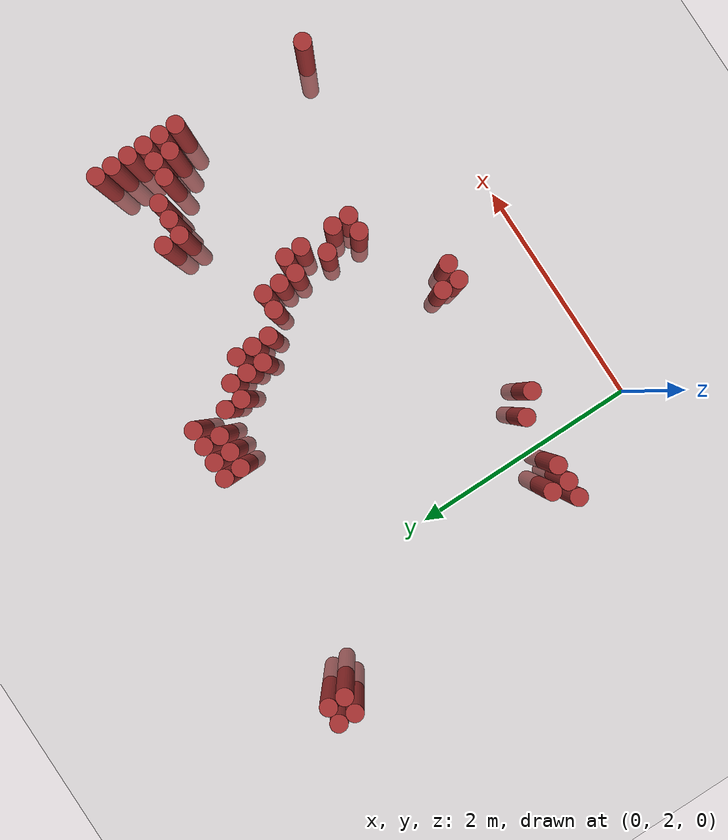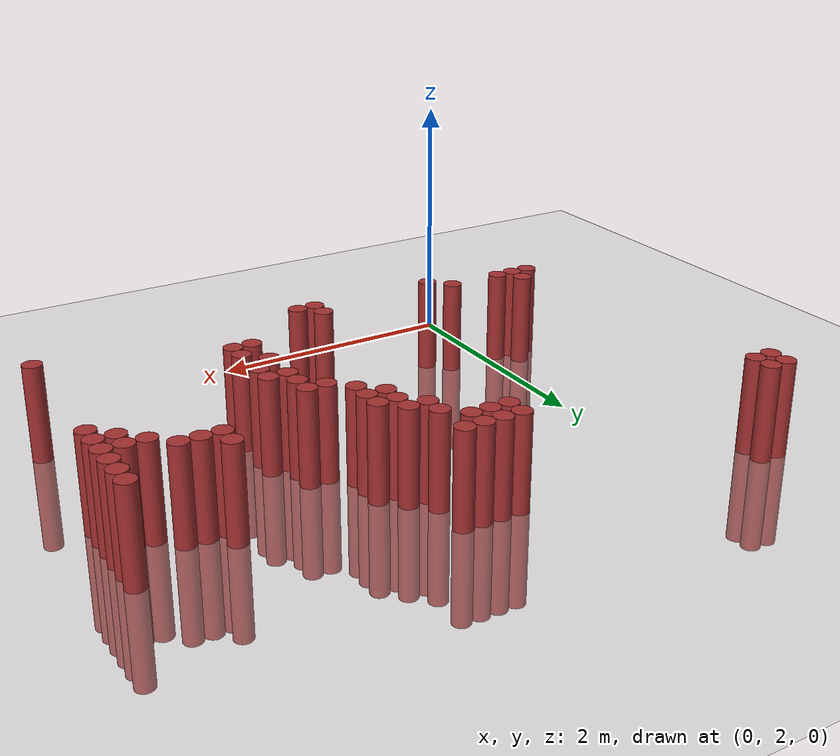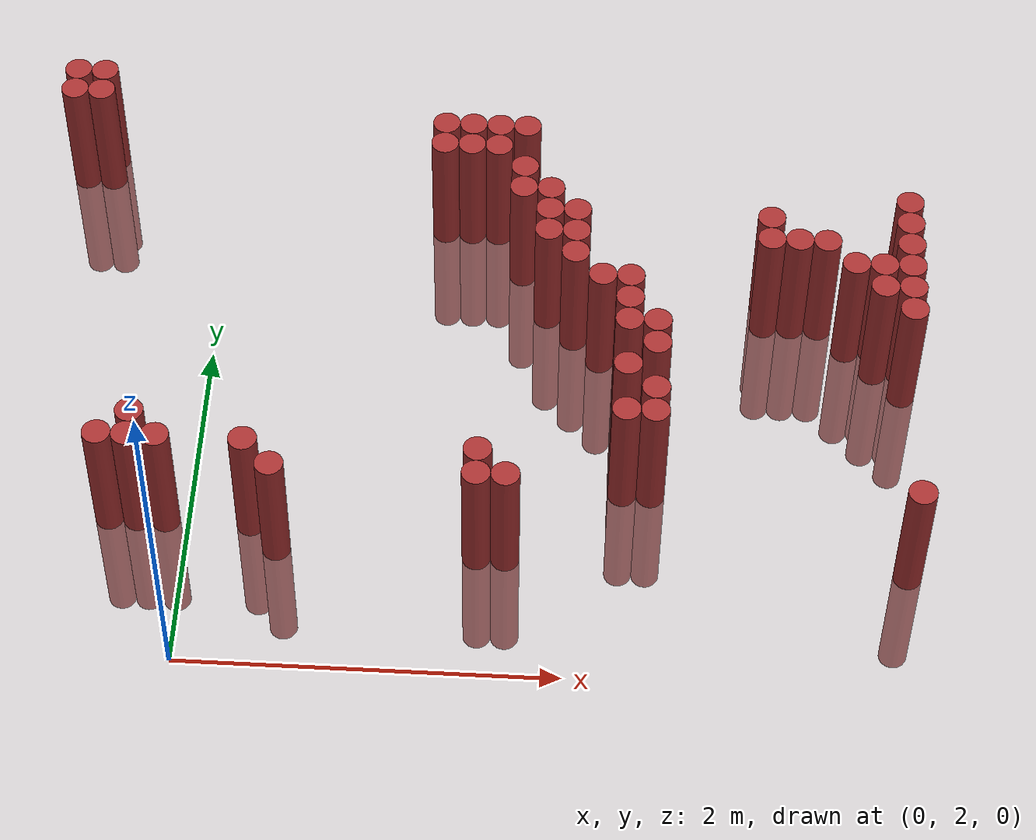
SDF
<sdf version="1.6">
 <world name="default">
  <model name="ground_plane">
   <static>1</static>
   <link name="link">
    <collision name="collision">
     <geometry><plane><normal>0 0 1</normal><size>100 100</size></plane></geometry>
     <surface><friction><ode><mu>100</mu><mu2>50</mu2></ode></friction></surface>
    </collision>
    <visual name="visual">
     <cast_shadows>0</cast_shadows>
     <geometry><plane><normal>0 0 1</normal><size>100 100</size></plane></geometry>
     <material>
      <script><uri>file://media/materials/scripts/gazebo.material</uri><name>Gazebo/Grey</name></script>
     </material>
    </visual>
   </link>
  </model>
  <model name="unit_cylinder_322">
   <static>1</static>
   <pose>-0.875000 5.275000 0.000000 0.000000 0.000000 0.000000</pose>
   <link name="link">
    <inertial>
     <mass>1</mass>
     <inertia><ixx>0.145833</ixx><ixy>0</ixy><ixz>0</ixz><iyy>0.145833</iyy><iyz>0</iyz><izz>0.125</izz></inertia>
    </inertial>
    <collision name="collision">
     <geometry><cylinder><radius>0.075000</radius><length>1.5</length></cylinder></geometry>
    </collision>
    <visual name="visual">
     <geometry><cylinder><radius>0.075000</radius><length>1.5</length></cylinder></geometry>
     <material>
      <ambient>0.648000 0.192000 0.192000 1</ambient>
      <diffuse>0.648000 0.192000 0.192000 1</diffuse>
     </material>
     <material>
      <script><name>Gazebo/Grey</name><uri>file://media/materials/scripts/gazebo.material</uri></script>
     </material>
    </visual>
   </link>
  </model>
  <model name="unit_cylinder_323">
   <static>1</static>
   <pose>-0.875000 5.425000 0.000000 0.000000 0.000000 0.000000</pose>
   <link name="link">
    <inertial>
     <mass>1</mass>
     <inertia><ixx>0.145833</ixx><ixy>0</ixy><ixz>0</ixz><iyy>0.145833</iyy><iyz>0</iyz><izz>0.125</izz></inertia>
    </inertial>
    <collision name="collision">
     <geometry><cylinder><radius>0.075000</radius><length>1.5</length></cylinder></geometry>
    </collision>
    <visual name="visual">
     <geometry><cylinder><radius>0.075000</radius><length>1.5</length></cylinder></geometry>
     <material>
      <ambient>0.648000 0.192000 0.192000 1</ambient>
      <diffuse>0.648000 0.192000 0.192000 1</diffuse>
     </material>
     <material>
      <script><name>Gazebo/Grey</name><uri>file://media/materials/scripts/gazebo.material</uri></script>
     </material>
    </visual>
   </link>
  </model>
  <model name="unit_cylinder_326">
   <static>1</static>
   <pose>-0.725000 5.275000 0.000000 0.000000 0.000000 0.000000</pose>
   <link name="link">
    <inertial>
     <mass>1</mass>
     <inertia><ixx>0.145833</ixx><ixy>0</ixy><ixz>0</ixz><iyy>0.145833</iyy><iyz>0</iyz><izz>0.125</izz></inertia>
    </inertial>
    <collision name="collision">
     <geometry><cylinder><radius>0.075000</radius><length>1.5</length></cylinder></geometry>
    </collision>
    <visual name="visual">
     <geometry><cylinder><radius>0.075000</radius><length>1.5</length></cylinder></geometry>
     <material>
      <ambient>0.648000 0.192000 0.192000 1</ambient>
      <diffuse>0.648000 0.192000 0.192000 1</diffuse>
     </material>
     <material>
      <script><name>Gazebo/Grey</name><uri>file://media/materials/scripts/gazebo.material</uri></script>
     </material>
    </visual>
   </link>
  </model>
  <model name="unit_cylinder_327">
   <static>1</static>
   <pose>-0.725000 5.425000 0.000000 0.000000 0.000000 0.000000</pose>
   <link name="link">
    <inertial>
     <mass>1</mass>
     <inertia><ixx>0.145833</ixx><ixy>0</ixy><ixz>0</ixz><iyy>0.145833</iyy><iyz>0</iyz><izz>0.125</izz></inertia>
    </inertial>
    <collision name="collision">
     <geometry><cylinder><radius>0.075000</radius><length>1.5</length></cylinder></geometry>
    </collision>
    <visual name="visual">
     <geometry><cylinder><radius>0.075000</radius><length>1.5</length></cylinder></geometry>
     <material>
      <ambient>0.648000 0.192000 0.192000 1</ambient>
      <diffuse>0.648000 0.192000 0.192000 1</diffuse>
     </material>
     <material>
      <script><name>Gazebo/Grey</name><uri>file://media/materials/scripts/gazebo.material</uri></script>
     </material>
    </visual>
   </link>
  </model>
  <model name="unit_cylinder_331">
   <static>1</static>
   <pose>-0.425000 2.875000 0.000000 0.000000 0.000000 0.000000</pose>
   <link name="link">
    <inertial>
     <mass>1</mass>
     <inertia><ixx>0.145833</ixx><ixy>0</ixy><ixz>0</ixz><iyy>0.145833</iyy><iyz>0</iyz><izz>0.125</izz></inertia>
    </inertial>
    <collision name="collision">
     <geometry><cylinder><radius>0.075000</radius><length>1.5</length></cylinder></geometry>
    </collision>
    <visual name="visual">
     <geometry><cylinder><radius>0.075000</radius><length>1.5</length></cylinder></geometry>
     <material>
      <ambient>0.648000 0.192000 0.192000 1</ambient>
      <diffuse>0.648000 0.192000 0.192000 1</diffuse>
     </material>
     <material>
      <script><name>Gazebo/Grey</name><uri>file://media/materials/scripts/gazebo.material</uri></script>
     </material>
    </visual>
   </link>
  </model>
  <model name="unit_cylinder_334">
   <static>1</static>
   <pose>-0.275000 2.875000 0.000000 0.000000 0.000000 0.000000</pose>
   <link name="link">
    <inertial>
     <mass>1</mass>
     <inertia><ixx>0.145833</ixx><ixy>0</ixy><ixz>0</ixz><iyy>0.145833</iyy><iyz>0</iyz><izz>0.125</izz></inertia>
    </inertial>
    <collision name="collision">
     <geometry><cylinder><radius>0.075000</radius><length>1.5</length></cylinder></geometry>
    </collision>
    <visual name="visual">
     <geometry><cylinder><radius>0.075000</radius><length>1.5</length></cylinder></geometry>
     <material>
      <ambient>0.648000 0.192000 0.192000 1</ambient>
      <diffuse>0.648000 0.192000 0.192000 1</diffuse>
     </material>
     <material>
      <script><name>Gazebo/Grey</name><uri>file://media/materials/scripts/gazebo.material</uri></script>
     </material>
    </visual>
   </link>
  </model>
  <model name="unit_cylinder_335">
   <static>1</static>
   <pose>-0.275000 3.025000 0.000000 0.000000 0.000000 0.000000</pose>
   <link name="link">
    <inertial>
     <mass>1</mass>
     <inertia><ixx>0.145833</ixx><ixy>0</ixy><ixz>0</ixz><iyy>0.145833</iyy><iyz>0</iyz><izz>0.125</izz></inertia>
    </inertial>
    <collision name="collision">
     <geometry><cylinder><radius>0.075000</radius><length>1.5</length></cylinder></geometry>
    </collision>
    <visual name="visual">
     <geometry><cylinder><radius>0.075000</radius><length>1.5</length></cylinder></geometry>
     <material>
      <ambient>0.648000 0.192000 0.192000 1</ambient>
      <diffuse>0.648000 0.192000 0.192000 1</diffuse>
     </material>
     <material>
      <script><name>Gazebo/Grey</name><uri>file://media/materials/scripts/gazebo.material</uri></script>
     </material>
    </visual>
   </link>
  </model>
  <model name="unit_cylinder_338">
   <static>1</static>
   <pose>-0.125000 2.875000 0.000000 0.000000 0.000000 0.000000</pose>
   <link name="link">
    <inertial>
     <mass>1</mass>
     <inertia><ixx>0.145833</ixx><ixy>0</ixy><ixz>0</ixz><iyy>0.145833</iyy><iyz>0</iyz><izz>0.125</izz></inertia>
    </inertial>
    <collision name="collision">
     <geometry><cylinder><radius>0.075000</radius><length>1.5</length></cylinder></geometry>
    </collision>
    <visual name="visual">
     <geometry><cylinder><radius>0.075000</radius><length>1.5</length></cylinder></geometry>
     <material>
      <ambient>0.648000 0.192000 0.192000 1</ambient>
      <diffuse>0.648000 0.192000 0.192000 1</diffuse>
     </material>
     <material>
      <script><name>Gazebo/Grey</name><uri>file://media/materials/scripts/gazebo.material</uri></script>
     </material>
    </visual>
   </link>
  </model>
  <model name="unit_cylinder_359">
   <static>1</static>
   <pose>0.325000 2.875000 0.000000 0.000000 0.000000 0.000000</pose>
   <link name="link">
    <inertial>
     <mass>1</mass>
     <inertia><ixx>0.145833</ixx><ixy>0</ixy><ixz>0</ixz><iyy>0.145833</iyy><iyz>0</iyz><izz>0.125</izz></inertia>
    </inertial>
    <collision name="collision">
     <geometry><cylinder><radius>0.075000</radius><length>1.5</length></cylinder></geometry>
    </collision>
    <visual name="visual">
     <geometry><cylinder><radius>0.075000</radius><length>1.5</length></cylinder></geometry>
     <material>
      <ambient>0.648000 0.192000 0.192000 1</ambient>
      <diffuse>0.648000 0.192000 0.192000 1</diffuse>
     </material>
     <material>
      <script><name>Gazebo/Grey</name><uri>file://media/materials/scripts/gazebo.material</uri></script>
     </material>
    </visual>
   </link>
  </model>
  <model name="unit_cylinder_363">
   <static>1</static>
   <pose>0.475000 2.725000 0.000000 0.000000 0.000000 0.000000</pose>
   <link name="link">
    <inertial>
     <mass>1</mass>
     <inertia><ixx>0.145833</ixx><ixy>0</ixy><ixz>0</ixz><iyy>0.145833</iyy><iyz>0</iyz><izz>0.125</izz></inertia>
    </inertial>
    <collision name="collision">
     <geometry><cylinder><radius>0.075000</radius><length>1.5</length></cylinder></geometry>
    </collision>
    <visual name="visual">
     <geometry><cylinder><radius>0.075000</radius><length>1.5</length></cylinder></geometry>
     <material>
      <ambient>0.648000 0.192000 0.192000 1</ambient>
      <diffuse>0.648000 0.192000 0.192000 1</diffuse>
     </material>
     <material>
      <script><name>Gazebo/Grey</name><uri>file://media/materials/scripts/gazebo.material</uri></script>
     </material>
    </visual>
   </link>
  </model>
  <model name="unit_cylinder_374">
   <static>1</static>
   <pose>1.225000 4.975000 0.000000 0.000000 0.000000 0.000000</pose>
   <link name="link">
    <inertial>
     <mass>1</mass>
     <inertia><ixx>0.145833</ixx><ixy>0</ixy><ixz>0</ixz><iyy>0.145833</iyy><iyz>0</iyz><izz>0.125</izz></inertia>
    </inertial>
    <collision name="collision">
     <geometry><cylinder><radius>0.075000</radius><length>1.5</length></cylinder></geometry>
    </collision>
    <visual name="visual">
     <geometry><cylinder><radius>0.075000</radius><length>1.5</length></cylinder></geometry>
     <material>
      <ambient>0.648000 0.192000 0.192000 1</ambient>
      <diffuse>0.648000 0.192000 0.192000 1</diffuse>
     </material>
     <material>
      <script><name>Gazebo/Grey</name><uri>file://media/materials/scripts/gazebo.material</uri></script>
     </material>
    </visual>
   </link>
  </model>
  <model name="unit_cylinder_375">
   <static>1</static>
   <pose>1.225000 5.125000 0.000000 0.000000 0.000000 0.000000</pose>
   <link name="link">
    <inertial>
     <mass>1</mass>
     <inertia><ixx>0.145833</ixx><ixy>0</ixy><ixz>0</ixz><iyy>0.145833</iyy><iyz>0</iyz><izz>0.125</izz></inertia>
    </inertial>
    <collision name="collision">
     <geometry><cylinder><radius>0.075000</radius><length>1.5</length></cylinder></geometry>
    </collision>
    <visual name="visual">
     <geometry><cylinder><radius>0.075000</radius><length>1.5</length></cylinder></geometry>
     <material>
      <ambient>0.648000 0.192000 0.192000 1</ambient>
      <diffuse>0.648000 0.192000 0.192000 1</diffuse>
     </material>
     <material>
      <script><name>Gazebo/Grey</name><uri>file://media/materials/scripts/gazebo.material</uri></script>
     </material>
    </visual>
   </link>
  </model>
  <model name="unit_cylinder_376">
   <static>1</static>
   <pose>1.375000 4.975000 0.000000 0.000000 0.000000 0.000000</pose>
   <link name="link">
    <inertial>
     <mass>1</mass>
     <inertia><ixx>0.145833</ixx><ixy>0</ixy><ixz>0</ixz><iyy>0.145833</iyy><iyz>0</iyz><izz>0.125</izz></inertia>
    </inertial>
    <collision name="collision">
     <geometry><cylinder><radius>0.075000</radius><length>1.5</length></cylinder></geometry>
    </collision>
    <visual name="visual">
     <geometry><cylinder><radius>0.075000</radius><length>1.5</length></cylinder></geometry>
     <material>
      <ambient>0.648000 0.192000 0.192000 1</ambient>
      <diffuse>0.648000 0.192000 0.192000 1</diffuse>
     </material>
     <material>
      <script><name>Gazebo/Grey</name><uri>file://media/materials/scripts/gazebo.material</uri></script>
     </material>
    </visual>
   </link>
  </model>
  <model name="unit_cylinder_377">
   <static>1</static>
   <pose>1.375000 5.125000 0.000000 0.000000 0.000000 0.000000</pose>
   <link name="link">
    <inertial>
     <mass>1</mass>
     <inertia><ixx>0.145833</ixx><ixy>0</ixy><ixz>0</ixz><iyy>0.145833</iyy><iyz>0</iyz><izz>0.125</izz></inertia>
    </inertial>
    <collision name="collision">
     <geometry><cylinder><radius>0.075000</radius><length>1.5</length></cylinder></geometry>
    </collision>
    <visual name="visual">
     <geometry><cylinder><radius>0.075000</radius><length>1.5</length></cylinder></geometry>
     <material>
      <ambient>0.648000 0.192000 0.192000 1</ambient>
      <diffuse>0.648000 0.192000 0.192000 1</diffuse>
     </material>
     <material>
      <script><name>Gazebo/Grey</name><uri>file://media/materials/scripts/gazebo.material</uri></script>
     </material>
    </visual>
   </link>
  </model>
  <model name="unit_cylinder_379">
   <static>1</static>
   <pose>1.525000 2.725000 0.000000 0.000000 0.000000 0.000000</pose>
   <link name="link">
    <inertial>
     <mass>1</mass>
     <inertia><ixx>0.145833</ixx><ixy>0</ixy><ixz>0</ixz><iyy>0.145833</iyy><iyz>0</iyz><izz>0.125</izz></inertia>
    </inertial>
    <collision name="collision">
     <geometry><cylinder><radius>0.075000</radius><length>1.5</length></cylinder></geometry>
    </collision>
    <visual name="visual">
     <geometry><cylinder><radius>0.075000</radius><length>1.5</length></cylinder></geometry>
     <material>
      <ambient>0.648000 0.192000 0.192000 1</ambient>
      <diffuse>0.648000 0.192000 0.192000 1</diffuse>
     </material>
     <material>
      <script><name>Gazebo/Grey</name><uri>file://media/materials/scripts/gazebo.material</uri></script>
     </material>
    </visual>
   </link>
  </model>
  <model name="unit_cylinder_380">
   <static>1</static>
   <pose>1.525000 2.875000 0.000000 0.000000 0.000000 0.000000</pose>
   <link name="link">
    <inertial>
     <mass>1</mass>
     <inertia><ixx>0.145833</ixx><ixy>0</ixy><ixz>0</ixz><iyy>0.145833</iyy><iyz>0</iyz><izz>0.125</izz></inertia>
    </inertial>
    <collision name="collision">
     <geometry><cylinder><radius>0.075000</radius><length>1.5</length></cylinder></geometry>
    </collision>
    <visual name="visual">
     <geometry><cylinder><radius>0.075000</radius><length>1.5</length></cylinder></geometry>
     <material>
      <ambient>0.648000 0.192000 0.192000 1</ambient>
      <diffuse>0.648000 0.192000 0.192000 1</diffuse>
     </material>
     <material>
      <script><name>Gazebo/Grey</name><uri>file://media/materials/scripts/gazebo.material</uri></script>
     </material>
    </visual>
   </link>
  </model>
  <model name="unit_cylinder_381">
   <static>1</static>
   <pose>1.525000 4.975000 0.000000 0.000000 0.000000 0.000000</pose>
   <link name="link">
    <inertial>
     <mass>1</mass>
     <inertia><ixx>0.145833</ixx><ixy>0</ixy><ixz>0</ixz><iyy>0.145833</iyy><iyz>0</iyz><izz>0.125</izz></inertia>
    </inertial>
    <collision name="collision">
     <geometry><cylinder><radius>0.075000</radius><length>1.5</length></cylinder></geometry>
    </collision>
    <visual name="visual">
     <geometry><cylinder><radius>0.075000</radius><length>1.5</length></cylinder></geometry>
     <material>
      <ambient>0.648000 0.192000 0.192000 1</ambient>
      <diffuse>0.648000 0.192000 0.192000 1</diffuse>
     </material>
     <material>
      <script><name>Gazebo/Grey</name><uri>file://media/materials/scripts/gazebo.material</uri></script>
     </material>
    </visual>
   </link>
  </model>
  <model name="unit_cylinder_382">
   <static>1</static>
   <pose>1.525000 5.125000 0.000000 0.000000 0.000000 0.000000</pose>
   <link name="link">
    <inertial>
     <mass>1</mass>
     <inertia><ixx>0.145833</ixx><ixy>0</ixy><ixz>0</ixz><iyy>0.145833</iyy><iyz>0</iyz><izz>0.125</izz></inertia>
    </inertial>
    <collision name="collision">
     <geometry><cylinder><radius>0.075000</radius><length>1.5</length></cylinder></geometry>
    </collision>
    <visual name="visual">
     <geometry><cylinder><radius>0.075000</radius><length>1.5</length></cylinder></geometry>
     <material>
      <ambient>0.648000 0.192000 0.192000 1</ambient>
      <diffuse>0.648000 0.192000 0.192000 1</diffuse>
     </material>
     <material>
      <script><name>Gazebo/Grey</name><uri>file://media/materials/scripts/gazebo.material</uri></script>
     </material>
    </visual>
   </link>
  </model>
  <model name="unit_cylinder_383">
   <static>1</static>
   <pose>1.675000 2.725000 0.000000 0.000000 0.000000 0.000000</pose>
   <link name="link">
    <inertial>
     <mass>1</mass>
     <inertia><ixx>0.145833</ixx><ixy>0</ixy><ixz>0</ixz><iyy>0.145833</iyy><iyz>0</iyz><izz>0.125</izz></inertia>
    </inertial>
    <collision name="collision">
     <geometry><cylinder><radius>0.075000</radius><length>1.5</length></cylinder></geometry>
    </collision>
    <visual name="visual">
     <geometry><cylinder><radius>0.075000</radius><length>1.5</length></cylinder></geometry>
     <material>
      <ambient>0.648000 0.192000 0.192000 1</ambient>
      <diffuse>0.648000 0.192000 0.192000 1</diffuse>
     </material>
     <material>
      <script><name>Gazebo/Grey</name><uri>file://media/materials/scripts/gazebo.material</uri></script>
     </material>
    </visual>
   </link>
  </model>
  <model name="unit_cylinder_384">
   <static>1</static>
   <pose>1.675000 4.675000 0.000000 0.000000 0.000000 0.000000</pose>
   <link name="link">
    <inertial>
     <mass>1</mass>
     <inertia><ixx>0.145833</ixx><ixy>0</ixy><ixz>0</ixz><iyy>0.145833</iyy><iyz>0</iyz><izz>0.125</izz></inertia>
    </inertial>
    <collision name="collision">
     <geometry><cylinder><radius>0.075000</radius><length>1.5</length></cylinder></geometry>
    </collision>
    <visual name="visual">
     <geometry><cylinder><radius>0.075000</radius><length>1.5</length></cylinder></geometry>
     <material>
      <ambient>0.648000 0.192000 0.192000 1</ambient>
      <diffuse>0.648000 0.192000 0.192000 1</diffuse>
     </material>
     <material>
      <script><name>Gazebo/Grey</name><uri>file://media/materials/scripts/gazebo.material</uri></script>
     </material>
    </visual>
   </link>
  </model>
  <model name="unit_cylinder_385">
   <static>1</static>
   <pose>1.675000 4.825000 0.000000 0.000000 0.000000 0.000000</pose>
   <link name="link">
    <inertial>
     <mass>1</mass>
     <inertia><ixx>0.145833</ixx><ixy>0</ixy><ixz>0</ixz><iyy>0.145833</iyy><iyz>0</iyz><izz>0.125</izz></inertia>
    </inertial>
    <collision name="collision">
     <geometry><cylinder><radius>0.075000</radius><length>1.5</length></cylinder></geometry>
    </collision>
    <visual name="visual">
     <geometry><cylinder><radius>0.075000</radius><length>1.5</length></cylinder></geometry>
     <material>
      <ambient>0.648000 0.192000 0.192000 1</ambient>
      <diffuse>0.648000 0.192000 0.192000 1</diffuse>
     </material>
     <material>
      <script><name>Gazebo/Grey</name><uri>file://media/materials/scripts/gazebo.material</uri></script>
     </material>
    </visual>
   </link>
  </model>
  <model name="unit_cylinder_386">
   <static>1</static>
   <pose>1.675000 5.125000 0.000000 0.000000 0.000000 0.000000</pose>
   <link name="link">
    <inertial>
     <mass>1</mass>
     <inertia><ixx>0.145833</ixx><ixy>0</ixy><ixz>0</ixz><iyy>0.145833</iyy><iyz>0</iyz><izz>0.125</izz></inertia>
    </inertial>
    <collision name="collision">
     <geometry><cylinder><radius>0.075000</radius><length>1.5</length></cylinder></geometry>
    </collision>
    <visual name="visual">
     <geometry><cylinder><radius>0.075000</radius><length>1.5</length></cylinder></geometry>
     <material>
      <ambient>0.648000 0.192000 0.192000 1</ambient>
      <diffuse>0.648000 0.192000 0.192000 1</diffuse>
     </material>
     <material>
      <script><name>Gazebo/Grey</name><uri>file://media/materials/scripts/gazebo.material</uri></script>
     </material>
    </visual>
   </link>
  </model>
  <model name="unit_cylinder_387">
   <static>1</static>
   <pose>1.825000 4.375000 0.000000 0.000000 0.000000 0.000000</pose>
   <link name="link">
    <inertial>
     <mass>1</mass>
     <inertia><ixx>0.145833</ixx><ixy>0</ixy><ixz>0</ixz><iyy>0.145833</iyy><iyz>0</iyz><izz>0.125</izz></inertia>
    </inertial>
    <collision name="collision">
     <geometry><cylinder><radius>0.075000</radius><length>1.5</length></cylinder></geometry>
    </collision>
    <visual name="visual">
     <geometry><cylinder><radius>0.075000</radius><length>1.5</length></cylinder></geometry>
     <material>
      <ambient>0.648000 0.192000 0.192000 1</ambient>
      <diffuse>0.648000 0.192000 0.192000 1</diffuse>
     </material>
     <material>
      <script><name>Gazebo/Grey</name><uri>file://media/materials/scripts/gazebo.material</uri></script>
     </material>
    </visual>
   </link>
  </model>
  <model name="unit_cylinder_388">
   <static>1</static>
   <pose>1.825000 4.525000 0.000000 0.000000 0.000000 0.000000</pose>
   <link name="link">
    <inertial>
     <mass>1</mass>
     <inertia><ixx>0.145833</ixx><ixy>0</ixy><ixz>0</ixz><iyy>0.145833</iyy><iyz>0</iyz><izz>0.125</izz></inertia>
    </inertial>
    <collision name="collision">
     <geometry><cylinder><radius>0.075000</radius><length>1.5</length></cylinder></geometry>
    </collision>
    <visual name="visual">
     <geometry><cylinder><radius>0.075000</radius><length>1.5</length></cylinder></geometry>
     <material>
      <ambient>0.648000 0.192000 0.192000 1</ambient>
      <diffuse>0.648000 0.192000 0.192000 1</diffuse>
     </material>
     <material>
      <script><name>Gazebo/Grey</name><uri>file://media/materials/scripts/gazebo.material</uri></script>
     </material>
    </visual>
   </link>
  </model>
  <model name="unit_cylinder_389">
   <static>1</static>
   <pose>1.825000 4.675000 0.000000 0.000000 0.000000 0.000000</pose>
   <link name="link">
    <inertial>
     <mass>1</mass>
     <inertia><ixx>0.145833</ixx><ixy>0</ixy><ixz>0</ixz><iyy>0.145833</iyy><iyz>0</iyz><izz>0.125</izz></inertia>
    </inertial>
    <collision name="collision">
     <geometry><cylinder><radius>0.075000</radius><length>1.5</length></cylinder></geometry>
    </collision>
    <visual name="visual">
     <geometry><cylinder><radius>0.075000</radius><length>1.5</length></cylinder></geometry>
     <material>
      <ambient>0.648000 0.192000 0.192000 1</ambient>
      <diffuse>0.648000 0.192000 0.192000 1</diffuse>
     </material>
     <material>
      <script><name>Gazebo/Grey</name><uri>file://media/materials/scripts/gazebo.material</uri></script>
     </material>
    </visual>
   </link>
  </model>
  <model name="unit_cylinder_390">
   <static>1</static>
   <pose>1.975000 4.225000 0.000000 0.000000 0.000000 0.000000</pose>
   <link name="link">
    <inertial>
     <mass>1</mass>
     <inertia><ixx>0.145833</ixx><ixy>0</ixy><ixz>0</ixz><iyy>0.145833</iyy><iyz>0</iyz><izz>0.125</izz></inertia>
    </inertial>
    <collision name="collision">
     <geometry><cylinder><radius>0.075000</radius><length>1.5</length></cylinder></geometry>
    </collision>
    <visual name="visual">
     <geometry><cylinder><radius>0.075000</radius><length>1.5</length></cylinder></geometry>
     <material>
      <ambient>0.648000 0.192000 0.192000 1</ambient>
      <diffuse>0.648000 0.192000 0.192000 1</diffuse>
     </material>
     <material>
      <script><name>Gazebo/Grey</name><uri>file://media/materials/scripts/gazebo.material</uri></script>
     </material>
    </visual>
   </link>
  </model>
  <model name="unit_cylinder_391">
   <static>1</static>
   <pose>1.975000 4.375000 0.000000 0.000000 0.000000 0.000000</pose>
   <link name="link">
    <inertial>
     <mass>1</mass>
     <inertia><ixx>0.145833</ixx><ixy>0</ixy><ixz>0</ixz><iyy>0.145833</iyy><iyz>0</iyz><izz>0.125</izz></inertia>
    </inertial>
    <collision name="collision">
     <geometry><cylinder><radius>0.075000</radius><length>1.5</length></cylinder></geometry>
    </collision>
    <visual name="visual">
     <geometry><cylinder><radius>0.075000</radius><length>1.5</length></cylinder></geometry>
     <material>
      <ambient>0.648000 0.192000 0.192000 1</ambient>
      <diffuse>0.648000 0.192000 0.192000 1</diffuse>
     </material>
     <material>
      <script><name>Gazebo/Grey</name><uri>file://media/materials/scripts/gazebo.material</uri></script>
     </material>
    </visual>
   </link>
  </model>
  <model name="unit_cylinder_392">
   <static>1</static>
   <pose>1.975000 4.525000 0.000000 0.000000 0.000000 0.000000</pose>
   <link name="link">
    <inertial>
     <mass>1</mass>
     <inertia><ixx>0.145833</ixx><ixy>0</ixy><ixz>0</ixz><iyy>0.145833</iyy><iyz>0</iyz><izz>0.125</izz></inertia>
    </inertial>
    <collision name="collision">
     <geometry><cylinder><radius>0.075000</radius><length>1.5</length></cylinder></geometry>
    </collision>
    <visual name="visual">
     <geometry><cylinder><radius>0.075000</radius><length>1.5</length></cylinder></geometry>
     <material>
      <ambient>0.648000 0.192000 0.192000 1</ambient>
      <diffuse>0.648000 0.192000 0.192000 1</diffuse>
     </material>
     <material>
      <script><name>Gazebo/Grey</name><uri>file://media/materials/scripts/gazebo.material</uri></script>
     </material>
    </visual>
   </link>
  </model>
  <model name="unit_cylinder_396">
   <static>1</static>
   <pose>2.125000 4.075000 0.000000 0.000000 0.000000 0.000000</pose>
   <link name="link">
    <inertial>
     <mass>1</mass>
     <inertia><ixx>0.145833</ixx><ixy>0</ixy><ixz>0</ixz><iyy>0.145833</iyy><iyz>0</iyz><izz>0.125</izz></inertia>
    </inertial>
    <collision name="collision">
     <geometry><cylinder><radius>0.075000</radius><length>1.5</length></cylinder></geometry>
    </collision>
    <visual name="visual">
     <geometry><cylinder><radius>0.075000</radius><length>1.5</length></cylinder></geometry>
     <material>
      <ambient>0.648000 0.192000 0.192000 1</ambient>
      <diffuse>0.648000 0.192000 0.192000 1</diffuse>
     </material>
     <material>
      <script><name>Gazebo/Grey</name><uri>file://media/materials/scripts/gazebo.material</uri></script>
     </material>
    </visual>
   </link>
  </model>
  <model name="unit_cylinder_400">
   <static>1</static>
   <pose>2.275000 3.175000 0.000000 0.000000 0.000000 0.000000</pose>
   <link name="link">
    <inertial>
     <mass>1</mass>
     <inertia><ixx>0.145833</ixx><ixy>0</ixy><ixz>0</ixz><iyy>0.145833</iyy><iyz>0</iyz><izz>0.125</izz></inertia>
    </inertial>
    <collision name="collision">
     <geometry><cylinder><radius>0.075000</radius><length>1.5</length></cylinder></geometry>
    </collision>
    <visual name="visual">
     <geometry><cylinder><radius>0.075000</radius><length>1.5</length></cylinder></geometry>
     <material>
      <ambient>0.648000 0.192000 0.192000 1</ambient>
      <diffuse>0.648000 0.192000 0.192000 1</diffuse>
     </material>
     <material>
      <script><name>Gazebo/Grey</name><uri>file://media/materials/scripts/gazebo.material</uri></script>
     </material>
    </visual>
   </link>
  </model>
  <model name="unit_cylinder_401">
   <static>1</static>
   <pose>2.275000 3.475000 0.000000 0.000000 0.000000 0.000000</pose>
   <link name="link">
    <inertial>
     <mass>1</mass>
     <inertia><ixx>0.145833</ixx><ixy>0</ixy><ixz>0</ixz><iyy>0.145833</iyy><iyz>0</iyz><izz>0.125</izz></inertia>
    </inertial>
    <collision name="collision">
     <geometry><cylinder><radius>0.075000</radius><length>1.5</length></cylinder></geometry>
    </collision>
    <visual name="visual">
     <geometry><cylinder><radius>0.075000</radius><length>1.5</length></cylinder></geometry>
     <material>
      <ambient>0.648000 0.192000 0.192000 1</ambient>
      <diffuse>0.648000 0.192000 0.192000 1</diffuse>
     </material>
     <material>
      <script><name>Gazebo/Grey</name><uri>file://media/materials/scripts/gazebo.material</uri></script>
     </material>
    </visual>
   </link>
  </model>
  <model name="unit_cylinder_402">
   <static>1</static>
   <pose>2.275000 3.775000 0.000000 0.000000 0.000000 0.000000</pose>
   <link name="link">
    <inertial>
     <mass>1</mass>
     <inertia><ixx>0.145833</ixx><ixy>0</ixy><ixz>0</ixz><iyy>0.145833</iyy><iyz>0</iyz><izz>0.125</izz></inertia>
    </inertial>
    <collision name="collision">
     <geometry><cylinder><radius>0.075000</radius><length>1.5</length></cylinder></geometry>
    </collision>
    <visual name="visual">
     <geometry><cylinder><radius>0.075000</radius><length>1.5</length></cylinder></geometry>
     <material>
      <ambient>0.648000 0.192000 0.192000 1</ambient>
      <diffuse>0.648000 0.192000 0.192000 1</diffuse>
     </material>
     <material>
      <script><name>Gazebo/Grey</name><uri>file://media/materials/scripts/gazebo.material</uri></script>
     </material>
    </visual>
   </link>
  </model>
  <model name="unit_cylinder_403">
   <static>1</static>
   <pose>2.275000 3.925000 0.000000 0.000000 0.000000 0.000000</pose>
   <link name="link">
    <inertial>
     <mass>1</mass>
     <inertia><ixx>0.145833</ixx><ixy>0</ixy><ixz>0</ixz><iyy>0.145833</iyy><iyz>0</iyz><izz>0.125</izz></inertia>
    </inertial>
    <collision name="collision">
     <geometry><cylinder><radius>0.075000</radius><length>1.5</length></cylinder></geometry>
    </collision>
    <visual name="visual">
     <geometry><cylinder><radius>0.075000</radius><length>1.5</length></cylinder></geometry>
     <material>
      <ambient>0.648000 0.192000 0.192000 1</ambient>
      <diffuse>0.648000 0.192000 0.192000 1</diffuse>
     </material>
     <material>
      <script><name>Gazebo/Grey</name><uri>file://media/materials/scripts/gazebo.material</uri></script>
     </material>
    </visual>
   </link>
  </model>
  <model name="unit_cylinder_404">
   <static>1</static>
   <pose>2.275000 4.075000 0.000000 0.000000 0.000000 0.000000</pose>
   <link name="link">
    <inertial>
     <mass>1</mass>
     <inertia><ixx>0.145833</ixx><ixy>0</ixy><ixz>0</ixz><iyy>0.145833</iyy><iyz>0</iyz><izz>0.125</izz></inertia>
    </inertial>
    <collision name="collision">
     <geometry><cylinder><radius>0.075000</radius><length>1.5</length></cylinder></geometry>
    </collision>
    <visual name="visual">
     <geometry><cylinder><radius>0.075000</radius><length>1.5</length></cylinder></geometry>
     <material>
      <ambient>0.648000 0.192000 0.192000 1</ambient>
      <diffuse>0.648000 0.192000 0.192000 1</diffuse>
     </material>
     <material>
      <script><name>Gazebo/Grey</name><uri>file://media/materials/scripts/gazebo.material</uri></script>
     </material>
    </visual>
   </link>
  </model>
  <model name="unit_cylinder_407">
   <static>1</static>
   <pose>2.425000 3.175000 0.000000 0.000000 0.000000 0.000000</pose>
   <link name="link">
    <inertial>
     <mass>1</mass>
     <inertia><ixx>0.145833</ixx><ixy>0</ixy><ixz>0</ixz><iyy>0.145833</iyy><iyz>0</iyz><izz>0.125</izz></inertia>
    </inertial>
    <collision name="collision">
     <geometry><cylinder><radius>0.075000</radius><length>1.5</length></cylinder></geometry>
    </collision>
    <visual name="visual">
     <geometry><cylinder><radius>0.075000</radius><length>1.5</length></cylinder></geometry>
     <material>
      <ambient>0.648000 0.192000 0.192000 1</ambient>
      <diffuse>0.648000 0.192000 0.192000 1</diffuse>
     </material>
     <material>
      <script><name>Gazebo/Grey</name><uri>file://media/materials/scripts/gazebo.material</uri></script>
     </material>
    </visual>
   </link>
  </model>
  <model name="unit_cylinder_408">
   <static>1</static>
   <pose>2.425000 3.325000 0.000000 0.000000 0.000000 0.000000</pose>
   <link name="link">
    <inertial>
     <mass>1</mass>
     <inertia><ixx>0.145833</ixx><ixy>0</ixy><ixz>0</ixz><iyy>0.145833</iyy><iyz>0</iyz><izz>0.125</izz></inertia>
    </inertial>
    <collision name="collision">
     <geometry><cylinder><radius>0.075000</radius><length>1.5</length></cylinder></geometry>
    </collision>
    <visual name="visual">
     <geometry><cylinder><radius>0.075000</radius><length>1.5</length></cylinder></geometry>
     <material>
      <ambient>0.648000 0.192000 0.192000 1</ambient>
      <diffuse>0.648000 0.192000 0.192000 1</diffuse>
     </material>
     <material>
      <script><name>Gazebo/Grey</name><uri>file://media/materials/scripts/gazebo.material</uri></script>
     </material>
    </visual>
   </link>
  </model>
  <model name="unit_cylinder_409">
   <static>1</static>
   <pose>2.425000 3.625000 0.000000 0.000000 0.000000 0.000000</pose>
   <link name="link">
    <inertial>
     <mass>1</mass>
     <inertia><ixx>0.145833</ixx><ixy>0</ixy><ixz>0</ixz><iyy>0.145833</iyy><iyz>0</iyz><izz>0.125</izz></inertia>
    </inertial>
    <collision name="collision">
     <geometry><cylinder><radius>0.075000</radius><length>1.5</length></cylinder></geometry>
    </collision>
    <visual name="visual">
     <geometry><cylinder><radius>0.075000</radius><length>1.5</length></cylinder></geometry>
     <material>
      <ambient>0.648000 0.192000 0.192000 1</ambient>
      <diffuse>0.648000 0.192000 0.192000 1</diffuse>
     </material>
     <material>
      <script><name>Gazebo/Grey</name><uri>file://media/materials/scripts/gazebo.material</uri></script>
     </material>
    </visual>
   </link>
  </model>
  <model name="unit_cylinder_410">
   <static>1</static>
   <pose>2.425000 3.775000 0.000000 0.000000 0.000000 0.000000</pose>
   <link name="link">
    <inertial>
     <mass>1</mass>
     <inertia><ixx>0.145833</ixx><ixy>0</ixy><ixz>0</ixz><iyy>0.145833</iyy><iyz>0</iyz><izz>0.125</izz></inertia>
    </inertial>
    <collision name="collision">
     <geometry><cylinder><radius>0.075000</radius><length>1.5</length></cylinder></geometry>
    </collision>
    <visual name="visual">
     <geometry><cylinder><radius>0.075000</radius><length>1.5</length></cylinder></geometry>
     <material>
      <ambient>0.648000 0.192000 0.192000 1</ambient>
      <diffuse>0.648000 0.192000 0.192000 1</diffuse>
     </material>
     <material>
      <script><name>Gazebo/Grey</name><uri>file://media/materials/scripts/gazebo.material</uri></script>
     </material>
    </visual>
   </link>
  </model>
  <model name="unit_cylinder_417">
   <static>1</static>
   <pose>3.025000 4.375000 0.000000 0.000000 0.000000 0.000000</pose>
   <link name="link">
    <inertial>
     <mass>1</mass>
     <inertia><ixx>0.145833</ixx><ixy>0</ixy><ixz>0</ixz><iyy>0.145833</iyy><iyz>0</iyz><izz>0.125</izz></inertia>
    </inertial>
    <collision name="collision">
     <geometry><cylinder><radius>0.075000</radius><length>1.5</length></cylinder></geometry>
    </collision>
    <visual name="visual">
     <geometry><cylinder><radius>0.075000</radius><length>1.5</length></cylinder></geometry>
     <material>
      <ambient>0.648000 0.192000 0.192000 1</ambient>
      <diffuse>0.648000 0.192000 0.192000 1</diffuse>
     </material>
     <material>
      <script><name>Gazebo/Grey</name><uri>file://media/materials/scripts/gazebo.material</uri></script>
     </material>
    </visual>
   </link>
  </model>
  <model name="unit_cylinder_418">
   <static>1</static>
   <pose>3.025000 4.525000 0.000000 0.000000 0.000000 0.000000</pose>
   <link name="link">
    <inertial>
     <mass>1</mass>
     <inertia><ixx>0.145833</ixx><ixy>0</ixy><ixz>0</ixz><iyy>0.145833</iyy><iyz>0</iyz><izz>0.125</izz></inertia>
    </inertial>
    <collision name="collision">
     <geometry><cylinder><radius>0.075000</radius><length>1.5</length></cylinder></geometry>
    </collision>
    <visual name="visual">
     <geometry><cylinder><radius>0.075000</radius><length>1.5</length></cylinder></geometry>
     <material>
      <ambient>0.648000 0.192000 0.192000 1</ambient>
      <diffuse>0.648000 0.192000 0.192000 1</diffuse>
     </material>
     <material>
      <script><name>Gazebo/Grey</name><uri>file://media/materials/scripts/gazebo.material</uri></script>
     </material>
    </visual>
   </link>
  </model>
  <model name="unit_cylinder_420">
   <static>1</static>
   <pose>3.175000 4.375000 0.000000 0.000000 0.000000 0.000000</pose>
   <link name="link">
    <inertial>
     <mass>1</mass>
     <inertia><ixx>0.145833</ixx><ixy>0</ixy><ixz>0</ixz><iyy>0.145833</iyy><iyz>0</iyz><izz>0.125</izz></inertia>
    </inertial>
    <collision name="collision">
     <geometry><cylinder><radius>0.075000</radius><length>1.5</length></cylinder></geometry>
    </collision>
    <visual name="visual">
     <geometry><cylinder><radius>0.075000</radius><length>1.5</length></cylinder></geometry>
     <material>
      <ambient>0.648000 0.192000 0.192000 1</ambient>
      <diffuse>0.648000 0.192000 0.192000 1</diffuse>
     </material>
     <material>
      <script><name>Gazebo/Grey</name><uri>file://media/materials/scripts/gazebo.material</uri></script>
     </material>
    </visual>
   </link>
  </model>
  <model name="unit_cylinder_429">
   <static>1</static>
   <pose>3.325000 4.375000 0.000000 0.000000 0.000000 0.000000</pose>
   <link name="link">
    <inertial>
     <mass>1</mass>
     <inertia><ixx>0.145833</ixx><ixy>0</ixy><ixz>0</ixz><iyy>0.145833</iyy><iyz>0</iyz><izz>0.125</izz></inertia>
    </inertial>
    <collision name="collision">
     <geometry><cylinder><radius>0.075000</radius><length>1.5</length></cylinder></geometry>
    </collision>
    <visual name="visual">
     <geometry><cylinder><radius>0.075000</radius><length>1.5</length></cylinder></geometry>
     <material>
      <ambient>0.648000 0.192000 0.192000 1</ambient>
      <diffuse>0.648000 0.192000 0.192000 1</diffuse>
     </material>
     <material>
      <script><name>Gazebo/Grey</name><uri>file://media/materials/scripts/gazebo.material</uri></script>
     </material>
    </visual>
   </link>
  </model>
  <model name="unit_cylinder_441">
   <static>1</static>
   <pose>3.475000 4.225000 0.000000 0.000000 0.000000 0.000000</pose>
   <link name="link">
    <inertial>
     <mass>1</mass>
     <inertia><ixx>0.145833</ixx><ixy>0</ixy><ixz>0</ixz><iyy>0.145833</iyy><iyz>0</iyz><izz>0.125</izz></inertia>
    </inertial>
    <collision name="collision">
     <geometry><cylinder><radius>0.075000</radius><length>1.5</length></cylinder></geometry>
    </collision>
    <visual name="visual">
     <geometry><cylinder><radius>0.075000</radius><length>1.5</length></cylinder></geometry>
     <material>
      <ambient>0.648000 0.192000 0.192000 1</ambient>
      <diffuse>0.648000 0.192000 0.192000 1</diffuse>
     </material>
     <material>
      <script><name>Gazebo/Grey</name><uri>file://media/materials/scripts/gazebo.material</uri></script>
     </material>
    </visual>
   </link>
  </model>
  <model name="unit_cylinder_450">
   <static>1</static>
   <pose>3.625000 4.075000 0.000000 0.000000 0.000000 0.000000</pose>
   <link name="link">
    <inertial>
     <mass>1</mass>
     <inertia><ixx>0.145833</ixx><ixy>0</ixy><ixz>0</ixz><iyy>0.145833</iyy><iyz>0</iyz><izz>0.125</izz></inertia>
    </inertial>
    <collision name="collision">
     <geometry><cylinder><radius>0.075000</radius><length>1.5</length></cylinder></geometry>
    </collision>
    <visual name="visual">
     <geometry><cylinder><radius>0.075000</radius><length>1.5</length></cylinder></geometry>
     <material>
      <ambient>0.648000 0.192000 0.192000 1</ambient>
      <diffuse>0.648000 0.192000 0.192000 1</diffuse>
     </material>
     <material>
      <script><name>Gazebo/Grey</name><uri>file://media/materials/scripts/gazebo.material</uri></script>
     </material>
    </visual>
   </link>
  </model>
  <model name="unit_cylinder_451">
   <static>1</static>
   <pose>3.625000 4.225000 0.000000 0.000000 0.000000 0.000000</pose>
   <link name="link">
    <inertial>
     <mass>1</mass>
     <inertia><ixx>0.145833</ixx><ixy>0</ixy><ixz>0</ixz><iyy>0.145833</iyy><iyz>0</iyz><izz>0.125</izz></inertia>
    </inertial>
    <collision name="collision">
     <geometry><cylinder><radius>0.075000</radius><length>1.5</length></cylinder></geometry>
    </collision>
    <visual name="visual">
     <geometry><cylinder><radius>0.075000</radius><length>1.5</length></cylinder></geometry>
     <material>
      <ambient>0.648000 0.192000 0.192000 1</ambient>
      <diffuse>0.648000 0.192000 0.192000 1</diffuse>
     </material>
     <material>
      <script><name>Gazebo/Grey</name><uri>file://media/materials/scripts/gazebo.material</uri></script>
     </material>
    </visual>
   </link>
  </model>
  <model name="unit_cylinder_464">
   <static>1</static>
   <pose>3.775000 2.725000 0.000000 0.000000 0.000000 0.000000</pose>
   <link name="link">
    <inertial>
     <mass>1</mass>
     <inertia><ixx>0.145833</ixx><ixy>0</ixy><ixz>0</ixz><iyy>0.145833</iyy><iyz>0</iyz><izz>0.125</izz></inertia>
    </inertial>
    <collision name="collision">
     <geometry><cylinder><radius>0.075000</radius><length>1.5</length></cylinder></geometry>
    </collision>
    <visual name="visual">
     <geometry><cylinder><radius>0.075000</radius><length>1.5</length></cylinder></geometry>
     <material>
      <ambient>0.648000 0.192000 0.192000 1</ambient>
      <diffuse>0.648000 0.192000 0.192000 1</diffuse>
     </material>
     <material>
      <script><name>Gazebo/Grey</name><uri>file://media/materials/scripts/gazebo.material</uri></script>
     </material>
    </visual>
   </link>
  </model>
  <model name="unit_cylinder_465">
   <static>1</static>
   <pose>3.775000 3.925000 0.000000 0.000000 0.000000 0.000000</pose>
   <link name="link">
    <inertial>
     <mass>1</mass>
     <inertia><ixx>0.145833</ixx><ixy>0</ixy><ixz>0</ixz><iyy>0.145833</iyy><iyz>0</iyz><izz>0.125</izz></inertia>
    </inertial>
    <collision name="collision">
     <geometry><cylinder><radius>0.075000</radius><length>1.5</length></cylinder></geometry>
    </collision>
    <visual name="visual">
     <geometry><cylinder><radius>0.075000</radius><length>1.5</length></cylinder></geometry>
     <material>
      <ambient>0.648000 0.192000 0.192000 1</ambient>
      <diffuse>0.648000 0.192000 0.192000 1</diffuse>
     </material>
     <material>
      <script><name>Gazebo/Grey</name><uri>file://media/materials/scripts/gazebo.material</uri></script>
     </material>
    </visual>
   </link>
  </model>
  <model name="unit_cylinder_466">
   <static>1</static>
   <pose>3.775000 4.075000 0.000000 0.000000 0.000000 0.000000</pose>
   <link name="link">
    <inertial>
     <mass>1</mass>
     <inertia><ixx>0.145833</ixx><ixy>0</ixy><ixz>0</ixz><iyy>0.145833</iyy><iyz>0</iyz><izz>0.125</izz></inertia>
    </inertial>
    <collision name="collision">
     <geometry><cylinder><radius>0.075000</radius><length>1.5</length></cylinder></geometry>
    </collision>
    <visual name="visual">
     <geometry><cylinder><radius>0.075000</radius><length>1.5</length></cylinder></geometry>
     <material>
      <ambient>0.648000 0.192000 0.192000 1</ambient>
      <diffuse>0.648000 0.192000 0.192000 1</diffuse>
     </material>
     <material>
      <script><name>Gazebo/Grey</name><uri>file://media/materials/scripts/gazebo.material</uri></script>
     </material>
    </visual>
   </link>
  </model>
  <model name="unit_cylinder_467">
   <static>1</static>
   <pose>3.775000 4.225000 0.000000 0.000000 0.000000 0.000000</pose>
   <link name="link">
    <inertial>
     <mass>1</mass>
     <inertia><ixx>0.145833</ixx><ixy>0</ixy><ixz>0</ixz><iyy>0.145833</iyy><iyz>0</iyz><izz>0.125</izz></inertia>
    </inertial>
    <collision name="collision">
     <geometry><cylinder><radius>0.075000</radius><length>1.5</length></cylinder></geometry>
    </collision>
    <visual name="visual">
     <geometry><cylinder><radius>0.075000</radius><length>1.5</length></cylinder></geometry>
     <material>
      <ambient>0.648000 0.192000 0.192000 1</ambient>
      <diffuse>0.648000 0.192000 0.192000 1</diffuse>
     </material>
     <material>
      <script><name>Gazebo/Grey</name><uri>file://media/materials/scripts/gazebo.material</uri></script>
     </material>
    </visual>
   </link>
  </model>
  <model name="unit_cylinder_468">
   <static>1</static>
   <pose>3.775000 4.375000 0.000000 0.000000 0.000000 0.000000</pose>
   <link name="link">
    <inertial>
     <mass>1</mass>
     <inertia><ixx>0.145833</ixx><ixy>0</ixy><ixz>0</ixz><iyy>0.145833</iyy><iyz>0</iyz><izz>0.125</izz></inertia>
    </inertial>
    <collision name="collision">
     <geometry><cylinder><radius>0.075000</radius><length>1.5</length></cylinder></geometry>
    </collision>
    <visual name="visual">
     <geometry><cylinder><radius>0.075000</radius><length>1.5</length></cylinder></geometry>
     <material>
      <ambient>0.648000 0.192000 0.192000 1</ambient>
      <diffuse>0.648000 0.192000 0.192000 1</diffuse>
     </material>
     <material>
      <script><name>Gazebo/Grey</name><uri>file://media/materials/scripts/gazebo.material</uri></script>
     </material>
    </visual>
   </link>
  </model>
  <model name="unit_cylinder_469">
   <static>1</static>
   <pose>3.775000 4.525000 0.000000 0.000000 0.000000 0.000000</pose>
   <link name="link">
    <inertial>
     <mass>1</mass>
     <inertia><ixx>0.145833</ixx><ixy>0</ixy><ixz>0</ixz><iyy>0.145833</iyy><iyz>0</iyz><izz>0.125</izz></inertia>
    </inertial>
    <collision name="collision">
     <geometry><cylinder><radius>0.075000</radius><length>1.5</length></cylinder></geometry>
    </collision>
    <visual name="visual">
     <geometry><cylinder><radius>0.075000</radius><length>1.5</length></cylinder></geometry>
     <material>
      <ambient>0.648000 0.192000 0.192000 1</ambient>
      <diffuse>0.648000 0.192000 0.192000 1</diffuse>
     </material>
     <material>
      <script><name>Gazebo/Grey</name><uri>file://media/materials/scripts/gazebo.material</uri></script>
     </material>
    </visual>
   </link>
  </model>
  <model name="unit_cylinder_470">
   <static>1</static>
   <pose>3.775000 4.675000 0.000000 0.000000 0.000000 0.000000</pose>
   <link name="link">
    <inertial>
     <mass>1</mass>
     <inertia><ixx>0.145833</ixx><ixy>0</ixy><ixz>0</ixz><iyy>0.145833</iyy><iyz>0</iyz><izz>0.125</izz></inertia>
    </inertial>
    <collision name="collision">
     <geometry><cylinder><radius>0.075000</radius><length>1.5</length></cylinder></geometry>
    </collision>
    <visual name="visual">
     <geometry><cylinder><radius>0.075000</radius><length>1.5</length></cylinder></geometry>
     <material>
      <ambient>0.648000 0.192000 0.192000 1</ambient>
      <diffuse>0.648000 0.192000 0.192000 1</diffuse>
     </material>
     <material>
      <script><name>Gazebo/Grey</name><uri>file://media/materials/scripts/gazebo.material</uri></script>
     </material>
    </visual>
   </link>
  </model>
 </world>
</sdf>
